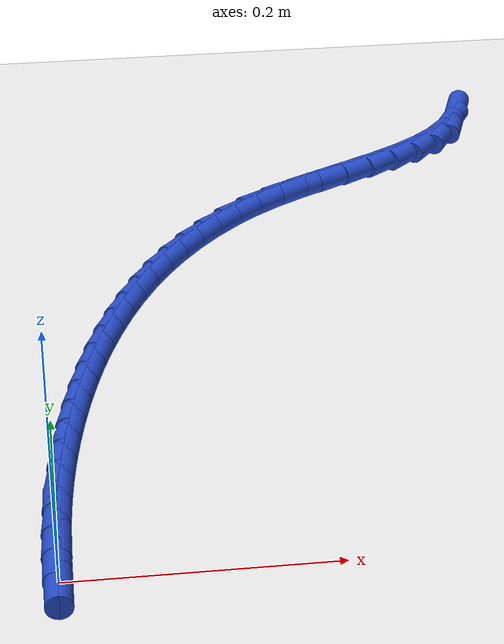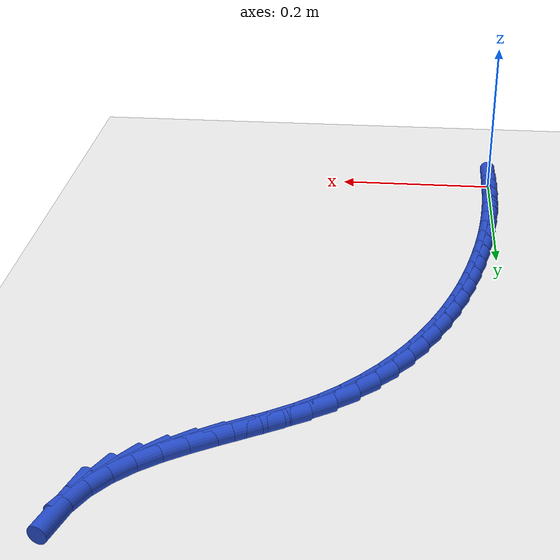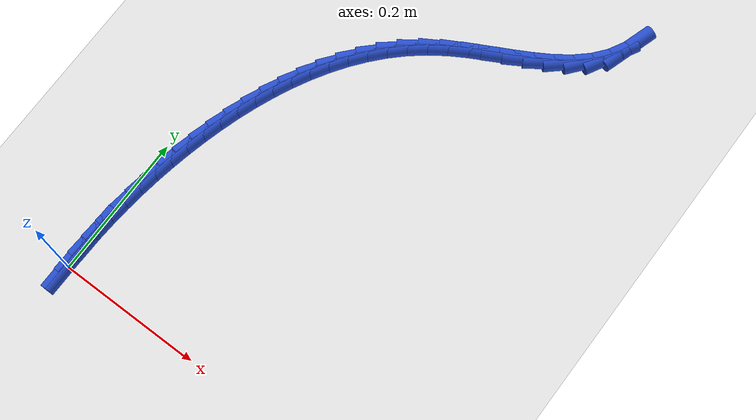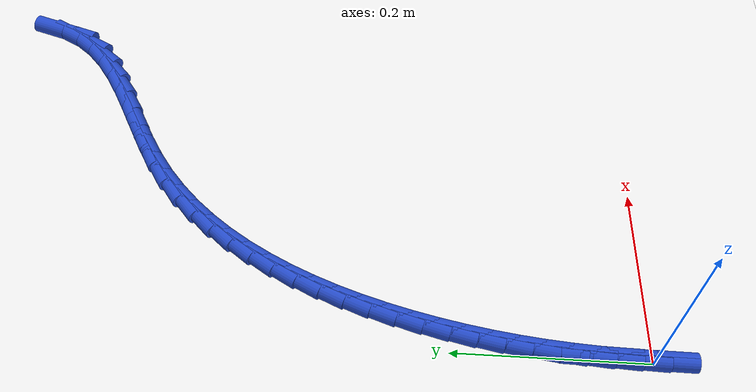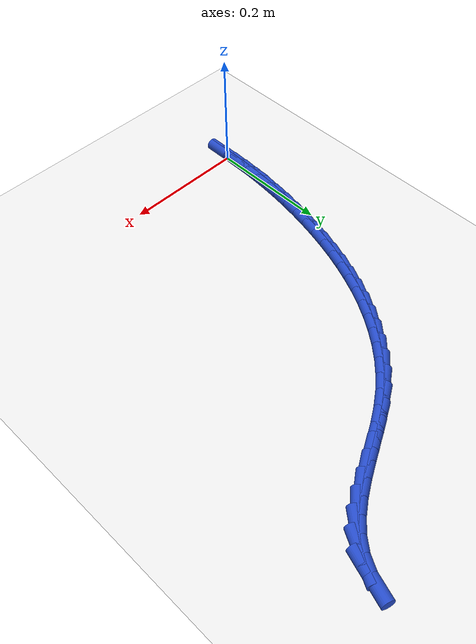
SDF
<sdf version="1.6">
 <world name="default">
  <model name="ground_plane">
   <static>1</static>
   <link name="link">
    <collision name="collision">
     <geometry><plane><normal>0 0 1</normal><size>100 100</size></plane></geometry>
     <surface><friction><ode><mu>100</mu><mu2>50</mu2></ode></friction></surface>
    </collision>
    <visual name="visual">
     <cast_shadows>0</cast_shadows>
     <geometry><plane><normal>0 0 1</normal><size>100 100</size></plane></geometry>
     <material>
      <script><uri>file://media/materials/scripts/gazebo.material</uri><name>Gazebo/WhiteGlow</name></script>
     </material>
    </visual>
   </link>
  </model>
  <model name="line">
   <link name="link_0">
    <pose>8.673617379884035e-19 1.3877787807814457e-17 0.01 0 1.57 1.5621152291754117</pose>
    <collision name="collision">
     <geometry><cylinder><radius>0.01</radius><length>0.08</length></cylinder></geometry>
    </collision>
    <visual name="visual">
     <material>
      <script><name>Gazebo/Blue</name><uri>file://media/materials/scripts/gazebo.material</uri></script>
     </material>
     <geometry><cylinder><radius>0.01</radius><length>0.08</length></cylinder></geometry>
    </visual>
   </link>
   <link name="link_1">
    <pose>0.0002293132251595381 0.026414570452059822 0.01 0 1.57 1.5361049946007925</pose>
    <collision name="collision">
     <geometry><cylinder><radius>0.01</radius><length>0.08</length></cylinder></geometry>
    </collision>
    <visual name="visual">
     <material>
      <script><name>Gazebo/Blue</name><uri>file://media/materials/scripts/gazebo.material</uri></script>
     </material>
     <geometry><cylinder><radius>0.01</radius><length>0.08</length></cylinder></geometry>
    </visual>
   </link>
   <link name="link_2">
    <pose>0.0011446429842703087 0.05278895493053264 0.01 0 1.57 1.5092401439006613</pose>
    <collision name="collision">
     <geometry><cylinder><radius>0.01</radius><length>0.08</length></cylinder></geometry>
    </collision>
    <visual name="visual">
     <material>
      <script><name>Gazebo/Blue</name><uri>file://media/materials/scripts/gazebo.material</uri></script>
     </material>
     <geometry><cylinder><radius>0.01</radius><length>0.08</length></cylinder></geometry>
    </visual>
   </link>
   <link name="link_3">
    <pose>0.0027680820692032307 0.07912892596854929 0.01 0 1.57 1.48158026406147</pose>
    <collision name="collision">
     <geometry><cylinder><radius>0.01</radius><length>0.08</length></cylinder></geometry>
    </collision>
    <visual name="visual">
     <material>
      <script><name>Gazebo/Blue</name><uri>file://media/materials/scripts/gazebo.material</uri></script>
     </material>
     <geometry><cylinder><radius>0.01</radius><length>0.08</length></cylinder></geometry>
    </visual>
   </link>
   <link name="link_4">
    <pose>0.005121723271829229 0.10544025609924051 0.01 0 1.57 1.4531932485179575</pose>
    <collision name="collision">
     <geometry><cylinder><radius>0.01</radius><length>0.08</length></cylinder></geometry>
    </collision>
    <visual name="visual">
     <material>
      <script><name>Gazebo/Blue</name><uri>file://media/materials/scripts/gazebo.material</uri></script>
     </material>
     <geometry><cylinder><radius>0.01</radius><length>0.08</length></cylinder></geometry>
    </visual>
   </link>
   <link name="link_5">
    <pose>0.008227659384019221 0.13172871785573714 0.01 0 1.57 1.424154919011025</pose>
    <collision name="collision">
     <geometry><cylinder><radius>0.01</radius><length>0.08</length></cylinder></geometry>
    </collision>
    <visual name="visual">
     <material>
      <script><name>Gazebo/Blue</name><uri>file://media/materials/scripts/gazebo.material</uri></script>
     </material>
     <geometry><cylinder><radius>0.01</radius><length>0.08</length></cylinder></geometry>
    </visual>
   </link>
   <link name="link_6">
    <pose>0.012107983197644128 0.15800008377116992 0.01 0 1.57 1.3945484018601864</pose>
    <collision name="collision">
     <geometry><cylinder><radius>0.01</radius><length>0.08</length></cylinder></geometry>
    </collision>
    <visual name="visual">
     <material>
      <script><name>Gazebo/Blue</name><uri>file://media/materials/scripts/gazebo.material</uri></script>
     </material>
     <geometry><cylinder><radius>0.01</radius><length>0.08</length></cylinder></geometry>
    </visual>
   </link>
   <link name="link_7">
    <pose>0.016784787504574874 0.18426012637866962 0.01 0 1.57 1.3644632593502504</pose>
    <collision name="collision">
     <geometry><cylinder><radius>0.01</radius><length>0.08</length></cylinder></geometry>
    </collision>
    <visual name="visual">
     <material>
      <script><name>Gazebo/Blue</name><uri>file://media/materials/scripts/gazebo.material</uri></script>
     </material>
     <geometry><cylinder><radius>0.01</radius><length>0.08</length></cylinder></geometry>
    </visual>
   </link>
   <link name="link_8">
    <pose>0.02228016509668238 0.21051461821136716 0.01 0 1.57 1.3339274144078819</pose>
    <collision name="collision">
     <geometry><cylinder><radius>0.01</radius><length>0.08</length></cylinder></geometry>
    </collision>
    <visual name="visual">
     <material>
      <script><name>Gazebo/Blue</name><uri>file://media/materials/scripts/gazebo.material</uri></script>
     </material>
     <geometry><cylinder><radius>0.01</radius><length>0.08</length></cylinder></geometry>
    </visual>
   </link>
   <link name="link_9">
    <pose>0.02861723554550145 0.23676587650979158 0.01 0 1.57 1.3017008043184863</pose>
    <collision name="collision">
     <geometry><cylinder><radius>0.01</radius><length>0.08</length></cylinder></geometry>
    </collision>
    <visual name="visual">
     <material>
      <script><name>Gazebo/Blue</name><uri>file://media/materials/scripts/gazebo.material</uri></script>
     </material>
     <geometry><cylinder><radius>0.01</radius><length>0.08</length></cylinder></geometry>
    </visual>
   </link>
   <link name="link_10">
    <pose>0.03583859797094577 0.26295066643766024 0.01 0 1.57 1.2664476155806226</pose>
    <collision name="collision">
     <geometry><cylinder><radius>0.01</radius><length>0.08</length></cylinder></geometry>
    </collision>
    <visual name="visual">
     <material>
      <script><name>Gazebo/Blue</name><uri>file://media/materials/scripts/gazebo.material</uri></script>
     </material>
     <geometry><cylinder><radius>0.01</radius><length>0.08</length></cylinder></geometry>
    </visual>
   </link>
   <link name="link_11">
    <pose>0.04400427736551788 0.2889471120589975 0.01 0 1.57 1.227851036137061</pose>
    <collision name="collision">
     <geometry><cylinder><radius>0.01</radius><length>0.08</length></cylinder></geometry>
    </collision>
    <visual name="visual">
     <material>
      <script><name>Gazebo/Blue</name><uri>file://media/materials/scripts/gazebo.material</uri></script>
     </material>
     <geometry><cylinder><radius>0.01</radius><length>0.08</length></cylinder></geometry>
    </visual>
   </link>
   <link name="link_12">
    <pose>0.05317491316743572 0.31463126972085853 0.01 0 1.57 1.185618888573758</pose>
    <collision name="collision">
     <geometry><cylinder><radius>0.01</radius><length>0.08</length></cylinder></geometry>
    </collision>
    <visual name="visual">
     <material>
      <script><name>Gazebo/Blue</name><uri>file://media/materials/scripts/gazebo.material</uri></script>
     </material>
     <geometry><cylinder><radius>0.01</radius><length>0.08</length></cylinder></geometry>
    </visual>
   </link>
   <link name="link_13">
    <pose>0.06341114481491726 0.3398791957702987 0.01 0 1.57 1.1394536189883473</pose>
    <collision name="collision">
     <geometry><cylinder><radius>0.01</radius><length>0.08</length></cylinder></geometry>
    </collision>
    <visual name="visual">
     <material>
      <script><name>Gazebo/Blue</name><uri>file://media/materials/scripts/gazebo.material</uri></script>
     </material>
     <geometry><cylinder><radius>0.01</radius><length>0.08</length></cylinder></geometry>
    </visual>
   </link>
   <link name="link_14">
    <pose>0.07477361174618043 0.3645669465543732 0.01 0 1.57 1.0890675836702062</pose>
    <collision name="collision">
     <geometry><cylinder><radius>0.01</radius><length>0.08</length></cylinder></geometry>
    </collision>
    <visual name="visual">
     <material>
      <script><name>Gazebo/Blue</name><uri>file://media/materials/scripts/gazebo.material</uri></script>
     </material>
     <geometry><cylinder><radius>0.01</radius><length>0.08</length></cylinder></geometry>
    </visual>
   </link>
   <link name="link_15">
    <pose>0.08732295339944318 0.3885705784201373 0.01 0 1.57 1.034204950976809</pose>
    <collision name="collision">
     <geometry><cylinder><radius>0.01</radius><length>0.08</length></cylinder></geometry>
    </collision>
    <visual name="visual">
     <material>
      <script><name>Gazebo/Blue</name><uri>file://media/materials/scripts/gazebo.material</uri></script>
     </material>
     <geometry><cylinder><radius>0.01</radius><length>0.08</length></cylinder></geometry>
    </visual>
   </link>
   <link name="link_16">
    <pose>0.10111980921292348 0.4117661477146463 0.01 0 1.57 0.9746712591551953</pose>
    <collision name="collision">
     <geometry><cylinder><radius>0.01</radius><length>0.08</length></cylinder></geometry>
    </collision>
    <visual name="visual">
     <material>
      <script><name>Gazebo/Blue</name><uri>file://media/materials/scripts/gazebo.material</uri></script>
     </material>
     <geometry><cylinder><radius>0.01</radius><length>0.08</length></cylinder></geometry>
    </visual>
   </link>
   <link name="link_17">
    <pose>0.11622481862483927 0.4340297107849556 0.01 0 1.57 0.910370661110897</pose>
    <collision name="collision">
     <geometry><cylinder><radius>0.01</radius><length>0.08</length></cylinder></geometry>
    </collision>
    <visual name="visual">
     <material>
      <script><name>Gazebo/Blue</name><uri>file://media/materials/scripts/gazebo.material</uri></script>
     </material>
     <geometry><cylinder><radius>0.01</radius><length>0.08</length></cylinder></geometry>
    </visual>
   </link>
   <link name="link_18">
    <pose>0.13269862107340843 0.4552373239781201 0.01 0 1.57 0.8413489667854219</pose>
    <collision name="collision">
     <geometry><cylinder><radius>0.01</radius><length>0.08</length></cylinder></geometry>
    </collision>
    <visual name="visual">
     <material>
      <script><name>Gazebo/Blue</name><uri>file://media/materials/scripts/gazebo.material</uri></script>
     </material>
     <geometry><cylinder><radius>0.01</radius><length>0.08</length></cylinder></geometry>
    </visual>
   </link>
   <link name="link_19">
    <pose>0.150601855996849 0.4752650436411953 0.01 0 1.57 0.767837699025177</pose>
    <collision name="collision">
     <geometry><cylinder><radius>0.01</radius><length>0.08</length></cylinder></geometry>
    </collision>
    <visual name="visual">
     <material>
      <script><name>Gazebo/Blue</name><uri>file://media/materials/scripts/gazebo.material</uri></script>
     </material>
     <geometry><cylinder><radius>0.01</radius><length>0.08</length></cylinder></geometry>
    </visual>
   </link>
   <link name="link_20">
    <pose>0.1699951628333789 0.4939889261212365 0.01 0 1.57 0.6902909568805675</pose>
    <collision name="collision">
     <geometry><cylinder><radius>0.01</radius><length>0.08</length></cylinder></geometry>
    </collision>
    <visual name="visual">
     <material>
      <script><name>Gazebo/Blue</name><uri>file://media/materials/scripts/gazebo.material</uri></script>
     </material>
     <geometry><cylinder><radius>0.01</radius><length>0.08</length></cylinder></geometry>
    </visual>
   </link>
   <link name="link_21">
    <pose>0.19093918102121613 0.5112850277652989 0.01 0 1.57 0.6096205533574776</pose>
    <collision name="collision">
     <geometry><cylinder><radius>0.01</radius><length>0.08</length></cylinder></geometry>
    </collision>
    <visual name="visual">
     <material>
      <script><name>Gazebo/Blue</name><uri>file://media/materials/scripts/gazebo.material</uri></script>
     </material>
     <geometry><cylinder><radius>0.01</radius><length>0.08</length></cylinder></geometry>
    </visual>
   </link>
   <link name="link_22">
    <pose>0.21349014319490003 0.5270335871475053 0.01 0 1.57 0.5391576238009415</pose>
    <collision name="collision">
     <geometry><cylinder><radius>0.01</radius><length>0.08</length></cylinder></geometry>
    </collision>
    <visual name="visual">
     <material>
      <script><name>Gazebo/Blue</name><uri>file://media/materials/scripts/gazebo.material</uri></script>
     </material>
     <geometry><cylinder><radius>0.01</radius><length>0.08</length></cylinder></geometry>
    </visual>
   </link>
   <link name="link_23">
    <pose>0.2374420848625966 0.5413636780520171 0.01 0 1.57 0.49715278975836</pose>
    <collision name="collision">
     <geometry><cylinder><radius>0.01</radius><length>0.08</length></cylinder></geometry>
    </collision>
    <visual name="visual">
     <material>
      <script><name>Gazebo/Blue</name><uri>file://media/materials/scripts/gazebo.material</uri></script>
     </material>
     <geometry><cylinder><radius>0.01</radius><length>0.08</length></cylinder></geometry>
    </visual>
   </link>
   <link name="link_24">
    <pose>0.26218390229287947 0.5547888670649314 0.01 0 1.57 0.48350048736273726</pose>
    <collision name="collision">
     <geometry><cylinder><radius>0.01</radius><length>0.08</length></cylinder></geometry>
    </collision>
    <visual name="visual">
     <material>
      <script><name>Gazebo/Blue</name><uri>file://media/materials/scripts/gazebo.material</uri></script>
     </material>
     <geometry><cylinder><radius>0.01</radius><length>0.08</length></cylinder></geometry>
    </visual>
   </link>
   <link name="link_25">
    <pose>0.2870697886501498 0.5678556553599021 0.01 0 1.57 0.49790572403119704</pose>
    <collision name="collision">
     <geometry><cylinder><radius>0.01</radius><length>0.08</length></cylinder></geometry>
    </collision>
    <visual name="visual">
     <material>
      <script><name>Gazebo/Blue</name><uri>file://media/materials/scripts/gazebo.material</uri></script>
     </material>
     <geometry><cylinder><radius>0.01</radius><length>0.08</length></cylinder></geometry>
    </visual>
   </link>
   <link name="link_26">
    <pose>0.3114539370988087 0.5811105441105839 0.01 0 1.57 0.5419221140527369</pose>
    <collision name="collision">
     <geometry><cylinder><radius>0.01</radius><length>0.08</length></cylinder></geometry>
    </collision>
    <visual name="visual">
     <material>
      <script><name>Gazebo/Blue</name><uri>file://media/materials/scripts/gazebo.material</uri></script>
     </material>
     <geometry><cylinder><radius>0.01</radius><length>0.08</length></cylinder></geometry>
    </visual>
   </link>
   <link name="link_27">
    <pose>0.334690540803257 0.5951000344906303 0.01 0 1.57 0.6188270970532647</pose>
    <collision name="collision">
     <geometry><cylinder><radius>0.01</radius><length>0.08</length></cylinder></geometry>
    </collision>
    <visual name="visual">
     <material>
      <script><name>Gazebo/Blue</name><uri>file://media/materials/scripts/gazebo.material</uri></script>
     </material>
     <geometry><cylinder><radius>0.01</radius><length>0.08</length></cylinder></geometry>
    </visual>
   </link>
   <link name="link_28">
    <pose>0.3561337929278963 0.6103706276736961 0.01 0 1.57 0.7326555558644336</pose>
    <collision name="collision">
     <geometry><cylinder><radius>0.01</radius><length>0.08</length></cylinder></geometry>
    </collision>
    <visual name="visual">
     <material>
      <script><name>Gazebo/Blue</name><uri>file://media/materials/scripts/gazebo.material</uri></script>
     </material>
     <geometry><cylinder><radius>0.01</radius><length>0.08</length></cylinder></geometry>
    </visual>
   </link>
   <link name="link_29">
    <pose>0.3751378866371274 0.627468824833435 0.01 0 1.57 0.8854593208021324</pose>
    <collision name="collision">
     <geometry><cylinder><radius>0.01</radius><length>0.08</length></cylinder></geometry>
    </collision>
    <visual name="visual">
     <material>
      <script><name>Gazebo/Blue</name><uri>file://media/materials/scripts/gazebo.material</uri></script>
     </material>
     <geometry><cylinder><radius>0.01</radius><length>0.08</length></cylinder></geometry>
    </visual>
   </link>
   <link name="link_30">
    <pose>0.3910570150953514 0.6469411271435013 0.01 0 1.57 1.0722695040322578</pose>
    <collision name="collision">
     <geometry><cylinder><radius>0.01</radius><length>0.08</length></cylinder></geometry>
    </collision>
    <visual name="visual">
     <material>
      <script><name>Gazebo/Blue</name><uri>file://media/materials/scripts/gazebo.material</uri></script>
     </material>
     <geometry><cylinder><radius>0.01</radius><length>0.08</length></cylinder></geometry>
    </visual>
   </link>
   <link name="link_31">
    <pose>0.403246814643812 0.669332745311993 0.01 0 1.57 1.260851132319361</pose>
    <collision name="collision">
     <geometry><cylinder><radius>0.01</radius><length>0.08</length></cylinder></geometry>
    </collision>
    <visual name="visual">
     <material>
      <script><name>Gazebo/Blue</name><uri>file://media/materials/scripts/gazebo.material</uri></script>
     </material>
     <geometry><cylinder><radius>0.01</radius><length>0.08</length></cylinder></geometry>
    </visual>
   </link>
   <link name="link_280">
    <pose>-9.540979117872439e-18 1.457167719820518e-16 0.01 0 1.57 1.5622797013657097</pose>
    <collision name="collision">
     <geometry><cylinder><radius>0.01</radius><length>0.08</length></cylinder></geometry>
    </collision>
    <visual name="visual">
     <material>
      <script><name>Gazebo/Blue</name><uri>file://media/materials/scripts/gazebo.material</uri></script>
     </material>
     <geometry><cylinder><radius>0.01</radius><length>0.08</length></cylinder></geometry>
    </visual>
   </link>
   <link name="link_281">
    <pose>0.00022492215971921681 0.026409136280195127 0.01 0 1.57 1.5372206784135065</pose>
    <collision name="collision">
     <geometry><cylinder><radius>0.01</radius><length>0.08</length></cylinder></geometry>
    </collision>
    <visual name="visual">
     <material>
      <script><name>Gazebo/Blue</name><uri>file://media/materials/scripts/gazebo.material</uri></script>
     </material>
     <geometry><cylinder><radius>0.01</radius><length>0.08</length></cylinder></geometry>
    </visual>
   </link>
   <link name="link_282">
    <pose>0.0011095144607478156 0.05274548155561474 0.01 0 1.57 1.549764177219022</pose>
    <collision name="collision">
     <geometry><cylinder><radius>0.01</radius><length>0.08</length></cylinder></geometry>
    </collision>
    <visual name="visual">
     <material>
      <script><name>Gazebo/Blue</name><uri>file://media/materials/scripts/gazebo.material</uri></script>
     </material>
     <geometry><cylinder><radius>0.01</radius><length>0.08</length></cylinder></geometry>
    </visual>
   </link>
  </model>
 </world>
</sdf>
